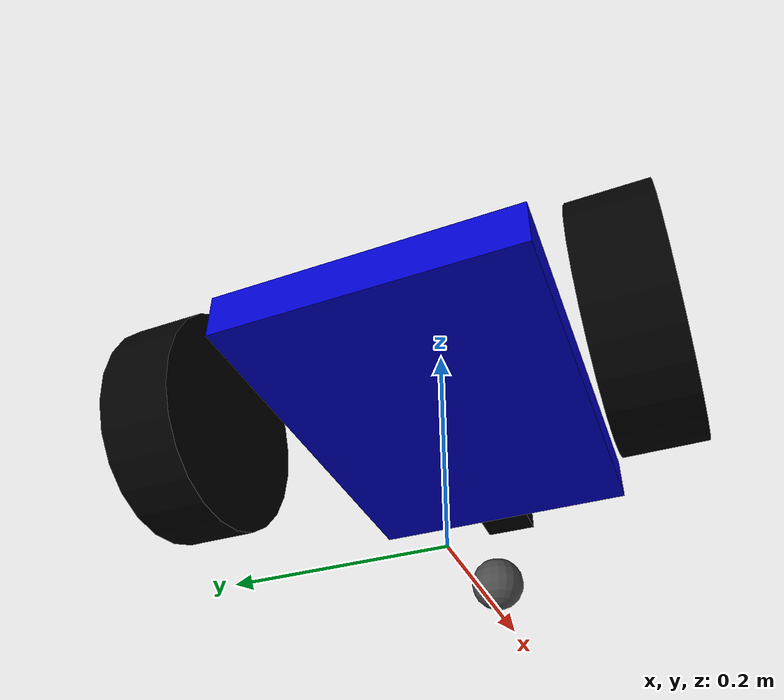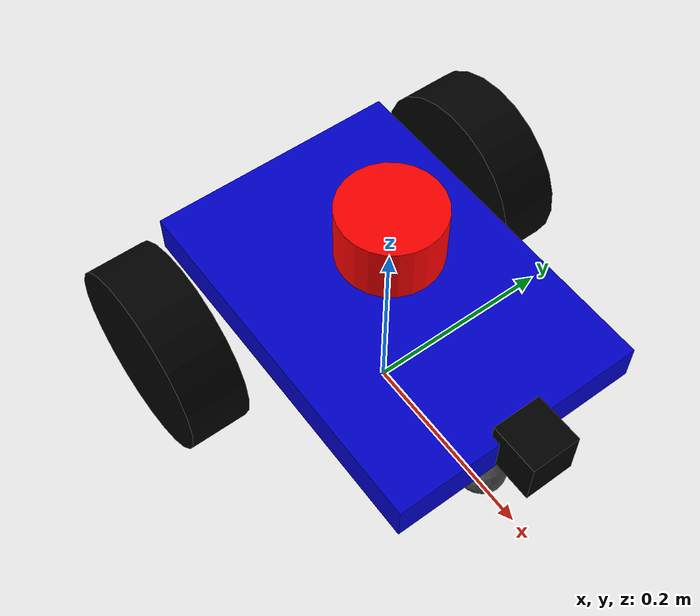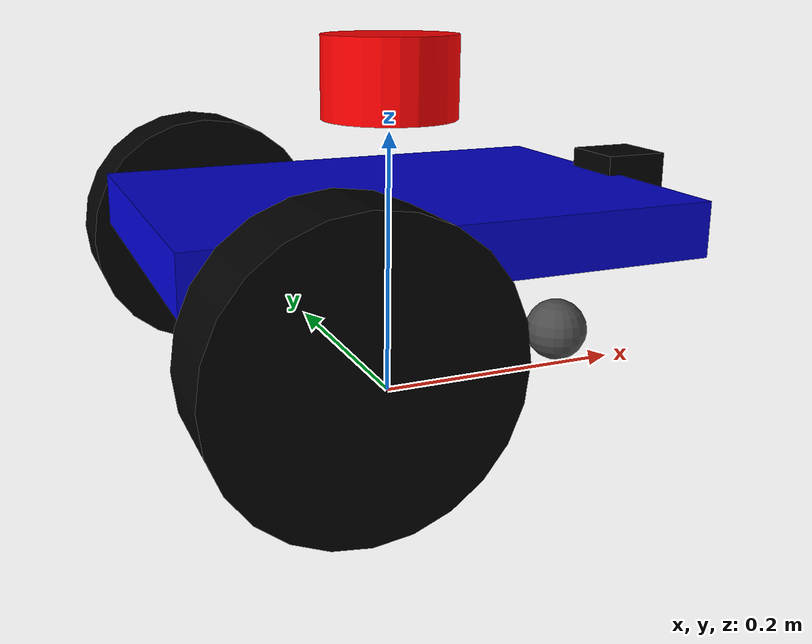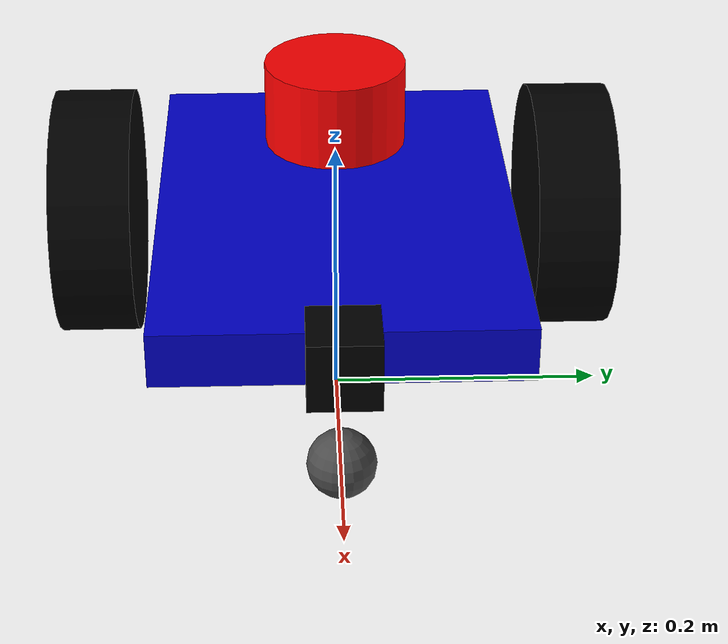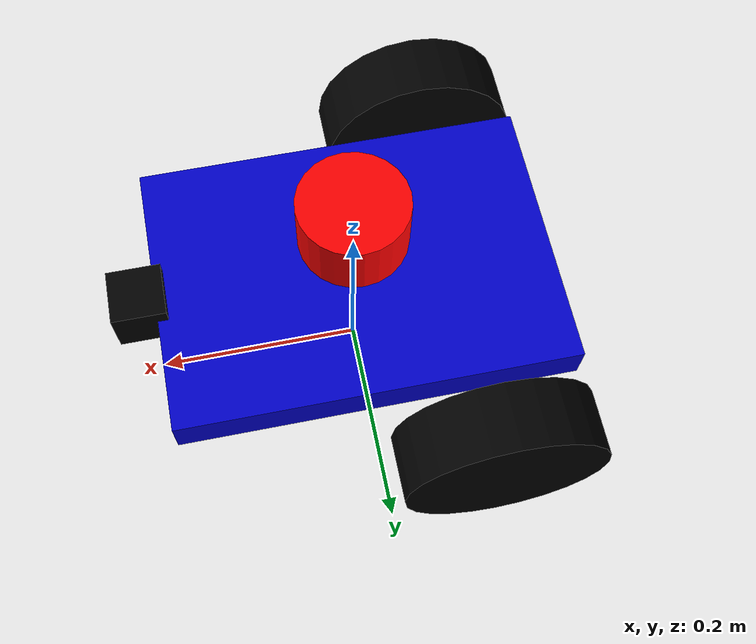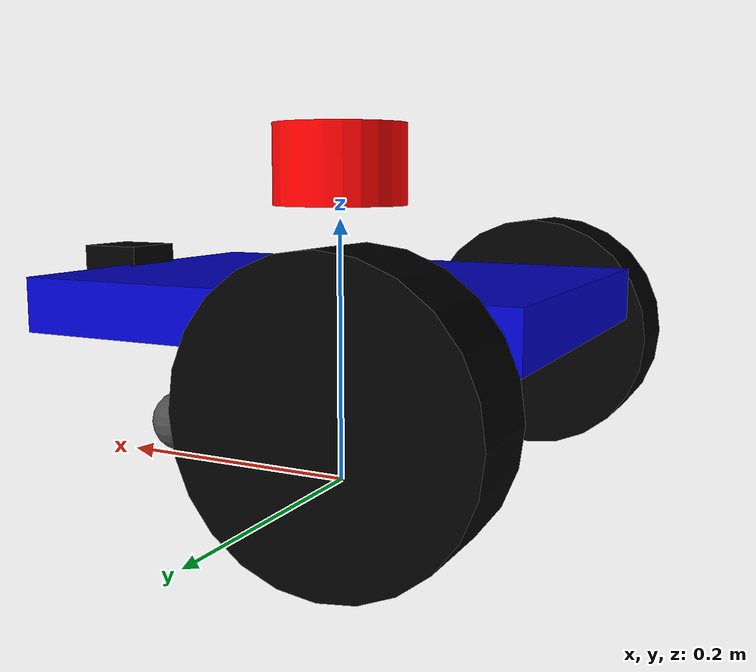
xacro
<?xml version="1.0"?>
<robot xmlns:xacro="http://www.ros.org/wiki/xacro" name="differential_robot">

  <xacro:macro name="box_inertia" params="m x y z">
    <inertial>
      <origin xyz="0 0 0" rpy="0 0 0"/>
      <mass value="${m}"/>
      <inertia ixx="${m*(y*y+z*z)/12}" ixy="0" ixz="0" iyy="${m*(x*x+z*z)/12}" iyz="0" izz="${m*(x*x+y*y)/12}"/>
    </inertial>
  </xacro:macro>

  <xacro:macro name="cylinder_inertia" params="m r h">
    <inertial>
      <origin xyz="0 0 0" rpy="0 0 0"/>
      <mass value="${m}"/>
      <inertia ixx="${m*(3*r*r+h*h)/12}" ixy="0" ixz="0" iyy="${m*(3*r*r+h*h)/12}" iyz="0" izz="${m*r*r/2}"/>
    </inertial>
  </xacro:macro>

  <xacro:macro name="sphere_inertia" params="m r">
    <inertial>
      <origin xyz="0 0 0" rpy="0 0 0"/>
      <mass value="${m}"/>
      <inertia ixx="${2*m*r*r/5}" ixy="0" ixz="0" iyy="${2*m*r*r/5}" iyz="0" izz="${2*m*r*r/5}"/>
    </inertial>
  </xacro:macro>

  <xacro:property name="chassis_length" value="0.37"/>
  <xacro:property name="chassis_width" value="0.26"/>
  <xacro:property name="chassis_height" value="0.04"/>
  <xacro:property name="chassis_mass" value="8.0"/>

  <xacro:property name="large_wheel_radius" value="0.095"/>
  <xacro:property name="large_wheel_width" value="0.061"/>
  <xacro:property name="large_wheel_mass" value="0.5"/>
  <xacro:property name="large_wheel_ygap" value="${0.0235 + large_wheel_width/2}"/>
  <xacro:property name="large_wheel_xoffset" value="0.1"/>

  <xacro:property name="caster_wheel_radius" value="0.025"/>
  <xacro:property name="caster_wheel_mass" value="0.1"/>
  <xacro:property name="caster_wheel_x_offset" value="0.15"/>

  <xacro:property name="lidar_radius" value="0.05"/>
  <xacro:property name="lidar_height" value="0.06"/>
  <xacro:property name="lidar_mass" value="0.2"/>

  <material name="blue"> <color rgba="0 0 0.8 1"/> </material>
  <material name="black"> <color rgba="0 0 0 1"/> </material>
  <material name="red"> <color rgba="1 0 0 1"/> </material>
  <material name="dark_grey"> <color rgba="0.3 0.3 0.3 1"/> </material>

  <link name="base_footprint"/>

  <joint name="base_joint" type="fixed">
    <parent link="base_footprint"/>
    <child link="base_link"/>
    <origin xyz="0 0 0.1" rpy="0 0 0"/>
  </joint>

  <link name="base_link">
    <visual>
      <origin xyz="0 0 ${chassis_height}" rpy="0 0 0"/>
      <geometry>
        <box size="${chassis_length} ${chassis_width} ${chassis_height}"/>
      </geometry>
      <material name="blue"/>
    </visual>
    <collision>
      <origin xyz="0 0 ${chassis_height/2}" rpy="0 0 0"/>
      <geometry>
        <box size="${chassis_length} ${chassis_width} ${chassis_height}"/>
      </geometry>
    </collision>
    <xacro:box_inertia m="${chassis_mass}" x="${chassis_length}" y="${chassis_width}" z="${chassis_height}"/>
  </link>
  <gazebo reference="base_link"> <material>Gazebo/Blue</material> </gazebo>

  <xacro:macro name="large_wheel" params="prefix y_reflect">
    <link name="${prefix}_wheel">
      <visual>
        <origin xyz="0 0 0" rpy="${pi/2} 0 0"/> <geometry>
          <cylinder radius="${large_wheel_radius}" length="${large_wheel_width}"/>
        </geometry>
        <material name="black"/>
      </visual>
      <collision>
        <origin xyz="0 0 0" rpy="${pi/2} 0 0"/>
        <geometry>
          <cylinder radius="${large_wheel_radius}" length="${large_wheel_width}"/>
        </geometry>
      </collision>
      <xacro:cylinder_inertia m="${large_wheel_mass}" r="${large_wheel_radius}" h="${large_wheel_width}"/>
    </link>
    <gazebo reference="${prefix}_wheel"> <material>Gazebo/Black</material> </gazebo>

    <joint name="${prefix}_wheel_joint" type="continuous">
      <parent link="base_link"/>
      <child link="${prefix}_wheel"/>
      <origin xyz="-${large_wheel_xoffset} ${y_reflect * (chassis_width/2 + large_wheel_ygap)} 0" rpy="0 0 0"/>
      <axis xyz="0 1 0"/>
    </joint>
  </xacro:macro>

  <xacro:large_wheel prefix="left" y_reflect="1"/>
  <xacro:large_wheel prefix="right" y_reflect="-1"/>

  <link name="caster_wheel">
    <visual>
      <geometry> <sphere radius="${caster_wheel_radius}"/> </geometry>
      <material name="dark_grey"/>
    </visual>
    <collision>
      <geometry> <sphere radius="${caster_wheel_radius}"/> </geometry>
    </collision>
    <xacro:sphere_inertia m="${caster_wheel_mass}" r="${caster_wheel_radius}"/>
  </link>
  <gazebo reference="caster_wheel">
    <material>Gazebo/DarkGrey</material>
    <mu1 value="0.001"/>
    <mu2 value="0.001"/>
  </gazebo>

  <joint name="caster_wheel_joint" type="fixed">
    <parent link="base_link"/>
    <child link="caster_wheel"/>
    <origin xyz="${caster_wheel_x_offset} 0 ${-caster_wheel_radius - 0.045}" rpy="0 0 0"/>
  </joint>

  <link name="lidar_link">
    <visual>
      <geometry> <cylinder radius="${lidar_radius}" length="${lidar_height}"/> </geometry>
      <material name="red"/>
    </visual>
    <collision>
      <geometry> <cylinder radius="${lidar_radius}" length="${lidar_height}"/> </geometry>
    </collision>
    <xacro:cylinder_inertia m="${lidar_mass}" r="${lidar_radius}" h="${lidar_height}"/>
  </link>
  <gazebo reference="lidar_link"> <material>Gazebo/Red</material> </gazebo>

  <joint name="lidar_joint" type="fixed">
    <parent link="base_link"/>
    <child link="lidar_link"/>
    <origin xyz="0 0 ${chassis_height + lidar_height + 0.04}" rpy="0 0 0"/>
  </joint>

  <link name="gps_link">
    <visual>
      <geometry>
        <box size="0.02 0.02 0.01"/>
      </geometry>
      <material name="dark_grey"/>
    </visual>
  </link>

  <joint name="gps_joint" type="fixed">
    <parent link="base_link"/>
    <child link="gps_link"/>
    <origin xyz="0.1 0 ${chassis_height}" rpy="0 0 0"/>
  </joint>

  <link name="imu_link">
    </link>

  <joint name="imu_joint" type="fixed">
    <parent link="base_link"/>
    <child link="imu_link"/>
    <origin xyz="0 0 0" rpy="0 0 0"/>
  </joint>

  <!--KAMERA-->
  <link name="camera_link">
    <visual>
    	<geometry>
    	<box size="0.05 0.05 0.05"/>
    	</geometry>
    	<material name="black"/>
    </visual>
  </link>

  <joint name="camera_joint" type="fixed">
  	<parent link="base_link"/>
  	<child link="camera_link"/>
  	<origin xyz="0.2 0 0.05" rpy="0 0 0"/>
  </joint>

  <joint name="camera_optical_joint" type="fixed">
  	<parent link="camera_link"/>
  	<child link="camera_link_optical"/>
  	<origin xyz="0 0 0" rpy="-1.57 0 -1.57"/> <!-- Rotacja do standardu CV -->
  </joint>

  <link name="camera_link_optical"></link>

  <gazebo>
    <plugin name="diff_drive" filename="libgazebo_ros_diff_drive.so">
      <left_joint>left_wheel_joint</left_joint>
      <right_joint>right_wheel_joint</right_joint>
      <wheel_separation>${chassis_width + 2*large_wheel_ygap}</wheel_separation>
      <wheel_diameter>${2*large_wheel_radius}</wheel_diameter>
      <max_wheel_torque>200</max_wheel_torque>
      <max_wheel_acceleration>10.0</max_wheel_acceleration>
      <odometry_topic>odom</odometry_topic>
      <odometry_frame>odom</odometry_frame>
      <robot_base_frame>base_footprint</robot_base_frame>
      <publish_odom>true</publish_odom>
      <publish_odom_tf>false</publish_odom_tf>
      <publish_wheel_tf>true</publish_wheel_tf>
    </plugin>
  </gazebo>

  <gazebo reference="lidar_link">
    <sensor name="sensor_lidar" type="ray">
      <pose>0 0 0 0 0 0</pose>
      <visualize>true</visualize> <update_rate>100</update_rate> <ray>
        <scan>
          <horizontal>
            <samples>360</samples> <resolution>1</resolution>
            <min_angle>-3.14159</min_angle> <max_angle>3.14159</max_angle>  </horizontal>
        </scan>
        <range>
          <min>0.10</min> <max>8.0</max> <resolution>0.01</resolution>
        </range>
      </ray>
      <plugin name="plugin_lidar" filename="libgazebo_ros_ray_sensor.so">
        <ros>
          <remapping>~/out:=scan</remapping> </ros>
        <output_type>sensor_msgs/LaserScan</output_type>
        <frame_name>lidar_link</frame_name>
      </plugin>
    </sensor>
  </gazebo>

  <gazebo reference="imu_link">
    <sensor name="imu_sensor" type="imu">
      <plugin name="imu_plugin" filename="libgazebo_ros_imu_sensor.so">
        <ros>
          <namespace>/</namespace>
          <remapping>~/out:=imu</remapping>
        </ros>
        <initial_orientation_as_reference>false</initial_orientation_as_reference>
        <frame_name>imu_link</frame_name>
      </plugin>
      <always_on>true</always_on>
      <update_rate>100</update_rate>
      <visualize>true</visualize>
      <imu>
      	<angular_velocity>
      	  <x><noise type="gaussian"><mean>0.0</mean><stddev>2e-4</stddev></noise></x>
      	  <y><noise type="gaussian"><mean>0.0</mean><stddev>2e-4</stddev></noise></y>
          <z><noise type="gaussian"><mean>0.0</mean><stddev>2e-4</stddev></noise></z>
       </angular_velocity>
       <linear_acceleration>
          <x><noise type="gaussian"><mean>0.0</mean><stddev>1.7e-2</stddev></noise></x>
          <y><noise type="gaussian"><mean>0.0</mean><stddev>1.7e-2</stddev></noise></y>
          <z><noise type="gaussian"><mean>0.0</mean><stddev>1.7e-2</stddev></noise></z>
       </linear_acceleration>
      </imu>
   </sensor>
  </gazebo>

  <gazebo reference="gps_link">
    <sensor name="gps_sensor" type="gps">
      <always_on>true</always_on>
      <update_rate>10.0</update_rate>
      <plugin name="gps_plugin" filename="libgazebo_ros_gps_sensor.so">
        <ros>
          <remapping>~/out:=/gps/fix</remapping>
        </ros>
        <frame_name>gps_link</frame_name>
      </plugin>
    </sensor>
  </gazebo>

  <gazebo reference="camera_link">
  <sensor type="camera" name="my_camera">
    <update_rate>30.0</update_rate>
    <visualize>true</visualize>
    <camera name="head">
      <horizontal_fov>1.3962634</horizontal_fov>
      <image>
        <width>416</width>
        <height>416</height>
        <format>R8G8B8</format>
      </image>
      <clip>
        <near>0.02</near>
        <far>300</far>
      </clip>
    </camera>

    <plugin name="camera_controller" filename="libgazebo_ros_camera.so">
      <ros>
        <namespace>/</namespace>
        <remapping>image_raw:=/camera/image_raw</remapping>
        <remapping>camera_info:=/camera/camera_info</remapping>
      </ros>
      <frame_name>camera_link_optical</frame_name>
    </plugin>
  </sensor>
  </gazebo>
</robot>
